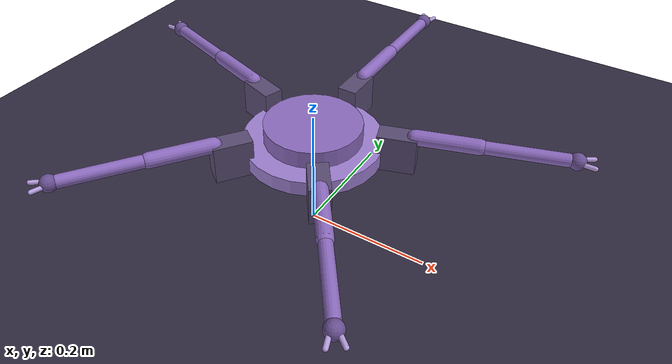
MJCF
<mujoco model="pebble">
  <option timestep="0.002" integrator="implicitfast"/>
  <visual>
    <global offwidth="720" offheight="480"/>
    <headlight ambient="0.4 0.4 0.45" diffuse="0.7 0.7 0.7"/>
    <quality shadowsize="2048"/>
  </visual>
  <asset>
    <texture name="grid" type="2d" builtin="checker" rgb1="0.16 0.14 0.20" rgb2="0.22 0.19 0.29" width="300" height="300"/>
    <material name="grid" texture="grid" texrepeat="12 12" reflectance="0.05"/>
  </asset>
  <worldbody>
    <light pos="0.5 -0.5 1.5" dir="-0.3 0.3 -1" diffuse="0.8 0.8 0.8"/>
    <geom name="floor" type="plane" size="6 6 0.1" material="grid" friction="1.2 0.01 0.001"/>
    <body name="torso" pos="0 0 0.135">
      <freejoint/>
      <geom type="cylinder" size="0.1100 0.012" pos="0 0 0.018" mass="1.097" rgba="0.62 0.50 0.82 1"/>
      <geom type="cylinder" size="0.0770 0.014" pos="0 0 0.044" mass="0.366" rgba="0.55 0.42 0.75 1"/>

      <body name="coxa0" pos="0.0000 0.1100 0" euler="0 0 90">
        <joint name="yaw0" type="hinge" axis="0 0 1" range="-40 40" damping="0.05" armature="0.005"/>
        <geom type="box" size="0.030 0.016 0.030" pos="0.020 0 0.030" mass="0.0862" rgba="0.35 0.30 0.45 1"/>
        <body name="femur0" pos="0.0450 0 0.0580">
          <joint name="hip0" type="hinge" axis="0 -1 0" range="-70 90" damping="0.05" armature="0.005"/>
          <geom type="capsule" fromto="0 0 0 0.0950 0 0" size="0.012" mass="0.0157" rgba="0.55 0.42 0.75 1"/>
          <body name="tibia0" pos="0.0950 0 0">
            <joint name="knee0" type="hinge" axis="0 -1 0" range="-150 -20" damping="0.05" armature="0.005"/>
            <geom type="capsule" fromto="0 0 0 0.1242 0 0" size="0.010" mass="0.095" rgba="0.55 0.42 0.75 1"/>
            <geom name="foot0" type="sphere" pos="0.1350 0 0" size="0.013" mass="0.041"
                  rgba="0.42 0.32 0.58 1" friction="1.2 0.01 0.001" condim="3"/>
            <geom type="capsule" fromto="0.1350 0.004 0 0.1590 0.011 0" size="0.0035"
                  mass="0.004" rgba="0.72 0.62 0.88 1" contype="0" conaffinity="0"/>
            <body name="clawb0" pos="0.1350 0 0">
              <joint name="claw0" type="hinge" axis="0 0 1" range="0 55" damping="0.01" armature="0.001"/>
              <geom type="capsule" fromto="0 -0.004 0 0.024 -0.011 0" size="0.0035"
                    mass="0.004" rgba="0.72 0.62 0.88 1" contype="0" conaffinity="0"/>
            </body>
          </body>
        </body>
      </body>
      <body name="coxa1" pos="-0.1046 0.0340 0" euler="0 0 162">
        <joint name="yaw1" type="hinge" axis="0 0 1" range="-40 40" damping="0.05" armature="0.005"/>
        <geom type="box" size="0.030 0.016 0.030" pos="0.020 0 0.030" mass="0.0862" rgba="0.35 0.30 0.45 1"/>
        <body name="femur1" pos="0.0450 0 0.0580">
          <joint name="hip1" type="hinge" axis="0 -1 0" range="-70 90" damping="0.05" armature="0.005"/>
          <geom type="capsule" fromto="0 0 0 0.0950 0 0" size="0.012" mass="0.0157" rgba="0.55 0.42 0.75 1"/>
          <body name="tibia1" pos="0.0950 0 0">
            <joint name="knee1" type="hinge" axis="0 -1 0" range="-150 -20" damping="0.05" armature="0.005"/>
            <geom type="capsule" fromto="0 0 0 0.1242 0 0" size="0.010" mass="0.095" rgba="0.55 0.42 0.75 1"/>
            <geom name="foot1" type="sphere" pos="0.1350 0 0" size="0.013" mass="0.041"
                  rgba="0.42 0.32 0.58 1" friction="1.2 0.01 0.001" condim="3"/>
            <geom type="capsule" fromto="0.1350 0.004 0 0.1590 0.011 0" size="0.0035"
                  mass="0.004" rgba="0.72 0.62 0.88 1" contype="0" conaffinity="0"/>
            <body name="clawb1" pos="0.1350 0 0">
              <joint name="claw1" type="hinge" axis="0 0 1" range="0 55" damping="0.01" armature="0.001"/>
              <geom type="capsule" fromto="0 -0.004 0 0.024 -0.011 0" size="0.0035"
                    mass="0.004" rgba="0.72 0.62 0.88 1" contype="0" conaffinity="0"/>
            </body>
          </body>
        </body>
      </body>
      <body name="coxa2" pos="-0.0647 -0.0890 0" euler="0 0 234">
        <joint name="yaw2" type="hinge" axis="0 0 1" range="-40 40" damping="0.05" armature="0.005"/>
        <geom type="box" size="0.030 0.016 0.030" pos="0.020 0 0.030" mass="0.0862" rgba="0.35 0.30 0.45 1"/>
        <body name="femur2" pos="0.0450 0 0.0580">
          <joint name="hip2" type="hinge" axis="0 -1 0" range="-70 90" damping="0.05" armature="0.005"/>
          <geom type="capsule" fromto="0 0 0 0.0950 0 0" size="0.012" mass="0.0157" rgba="0.55 0.42 0.75 1"/>
          <body name="tibia2" pos="0.0950 0 0">
            <joint name="knee2" type="hinge" axis="0 -1 0" range="-150 -20" damping="0.05" armature="0.005"/>
            <geom type="capsule" fromto="0 0 0 0.1242 0 0" size="0.010" mass="0.095" rgba="0.55 0.42 0.75 1"/>
            <geom name="foot2" type="sphere" pos="0.1350 0 0" size="0.013" mass="0.041"
                  rgba="0.42 0.32 0.58 1" friction="1.2 0.01 0.001" condim="3"/>
            <geom type="capsule" fromto="0.1350 0.004 0 0.1590 0.011 0" size="0.0035"
                  mass="0.004" rgba="0.72 0.62 0.88 1" contype="0" conaffinity="0"/>
            <body name="clawb2" pos="0.1350 0 0">
              <joint name="claw2" type="hinge" axis="0 0 1" range="0 55" damping="0.01" armature="0.001"/>
              <geom type="capsule" fromto="0 -0.004 0 0.024 -0.011 0" size="0.0035"
                    mass="0.004" rgba="0.72 0.62 0.88 1" contype="0" conaffinity="0"/>
            </body>
          </body>
        </body>
      </body>
      <body name="coxa3" pos="0.0647 -0.0890 0" euler="0 0 306">
        <joint name="yaw3" type="hinge" axis="0 0 1" range="-40 40" damping="0.05" armature="0.005"/>
        <geom type="box" size="0.030 0.016 0.030" pos="0.020 0 0.030" mass="0.0862" rgba="0.35 0.30 0.45 1"/>
        <body name="femur3" pos="0.0450 0 0.0580">
          <joint name="hip3" type="hinge" axis="0 -1 0" range="-70 90" damping="0.05" armature="0.005"/>
          <geom type="capsule" fromto="0 0 0 0.0950 0 0" size="0.012" mass="0.0157" rgba="0.55 0.42 0.75 1"/>
          <body name="tibia3" pos="0.0950 0 0">
            <joint name="knee3" type="hinge" axis="0 -1 0" range="-150 -20" damping="0.05" armature="0.005"/>
            <geom type="capsule" fromto="0 0 0 0.1242 0 0" size="0.010" mass="0.095" rgba="0.55 0.42 0.75 1"/>
            <geom name="foot3" type="sphere" pos="0.1350 0 0" size="0.013" mass="0.041"
                  rgba="0.42 0.32 0.58 1" friction="1.2 0.01 0.001" condim="3"/>
            <geom type="capsule" fromto="0.1350 0.004 0 0.1590 0.011 0" size="0.0035"
                  mass="0.004" rgba="0.72 0.62 0.88 1" contype="0" conaffinity="0"/>
            <body name="clawb3" pos="0.1350 0 0">
              <joint name="claw3" type="hinge" axis="0 0 1" range="0 55" damping="0.01" armature="0.001"/>
              <geom type="capsule" fromto="0 -0.004 0 0.024 -0.011 0" size="0.0035"
                    mass="0.004" rgba="0.72 0.62 0.88 1" contype="0" conaffinity="0"/>
            </body>
          </body>
        </body>
      </body>
      <body name="coxa4" pos="0.1046 0.0340 0" euler="0 0 378">
        <joint name="yaw4" type="hinge" axis="0 0 1" range="-40 40" damping="0.05" armature="0.005"/>
        <geom type="box" size="0.030 0.016 0.030" pos="0.020 0 0.030" mass="0.0862" rgba="0.35 0.30 0.45 1"/>
        <body name="femur4" pos="0.0450 0 0.0580">
          <joint name="hip4" type="hinge" axis="0 -1 0" range="-70 90" damping="0.05" armature="0.005"/>
          <geom type="capsule" fromto="0 0 0 0.0950 0 0" size="0.012" mass="0.0157" rgba="0.55 0.42 0.75 1"/>
          <body name="tibia4" pos="0.0950 0 0">
            <joint name="knee4" type="hinge" axis="0 -1 0" range="-150 -20" damping="0.05" armature="0.005"/>
            <geom type="capsule" fromto="0 0 0 0.1242 0 0" size="0.010" mass="0.095" rgba="0.55 0.42 0.75 1"/>
            <geom name="foot4" type="sphere" pos="0.1350 0 0" size="0.013" mass="0.041"
                  rgba="0.42 0.32 0.58 1" friction="1.2 0.01 0.001" condim="3"/>
            <geom type="capsule" fromto="0.1350 0.004 0 0.1590 0.011 0" size="0.0035"
                  mass="0.004" rgba="0.72 0.62 0.88 1" contype="0" conaffinity="0"/>
            <body name="clawb4" pos="0.1350 0 0">
              <joint name="claw4" type="hinge" axis="0 0 1" range="0 55" damping="0.01" armature="0.001"/>
              <geom type="capsule" fromto="0 -0.004 0 0.024 -0.011 0" size="0.0035"
                    mass="0.004" rgba="0.72 0.62 0.88 1" contype="0" conaffinity="0"/>
            </body>
          </body>
        </body>
      </body>
    </body>
  </worldbody>
  <actuator>
    <position name="yaw0" joint="yaw0" kp="20" kv="0.6" forcerange="-2.94 2.94"/>
    <position name="hip0" joint="hip0" kp="20" kv="0.6" forcerange="-2.94 2.94"/>
    <position name="knee0" joint="knee0" kp="20" kv="0.6" forcerange="-2.94 2.94"/>
    <position name="yaw1" joint="yaw1" kp="20" kv="0.6" forcerange="-2.94 2.94"/>
    <position name="hip1" joint="hip1" kp="20" kv="0.6" forcerange="-2.94 2.94"/>
    <position name="knee1" joint="knee1" kp="20" kv="0.6" forcerange="-2.94 2.94"/>
    <position name="yaw2" joint="yaw2" kp="20" kv="0.6" forcerange="-2.94 2.94"/>
    <position name="hip2" joint="hip2" kp="20" kv="0.6" forcerange="-2.94 2.94"/>
    <position name="knee2" joint="knee2" kp="20" kv="0.6" forcerange="-2.94 2.94"/>
    <position name="yaw3" joint="yaw3" kp="20" kv="0.6" forcerange="-2.94 2.94"/>
    <position name="hip3" joint="hip3" kp="20" kv="0.6" forcerange="-2.94 2.94"/>
    <position name="knee3" joint="knee3" kp="20" kv="0.6" forcerange="-2.94 2.94"/>
    <position name="yaw4" joint="yaw4" kp="20" kv="0.6" forcerange="-2.94 2.94"/>
    <position name="hip4" joint="hip4" kp="20" kv="0.6" forcerange="-2.94 2.94"/>
    <position name="knee4" joint="knee4" kp="20" kv="0.6" forcerange="-2.94 2.94"/>
    <position name="claw0" joint="claw0" kp="0.5" kv="0.02" forcerange="-0.2 0.2"/>
    <position name="claw1" joint="claw1" kp="0.5" kv="0.02" forcerange="-0.2 0.2"/>
    <position name="claw2" joint="claw2" kp="0.5" kv="0.02" forcerange="-0.2 0.2"/>
    <position name="claw3" joint="claw3" kp="0.5" kv="0.02" forcerange="-0.2 0.2"/>
    <position name="claw4" joint="claw4" kp="0.5" kv="0.02" forcerange="-0.2 0.2"/>
  </actuator>
</mujoco>
